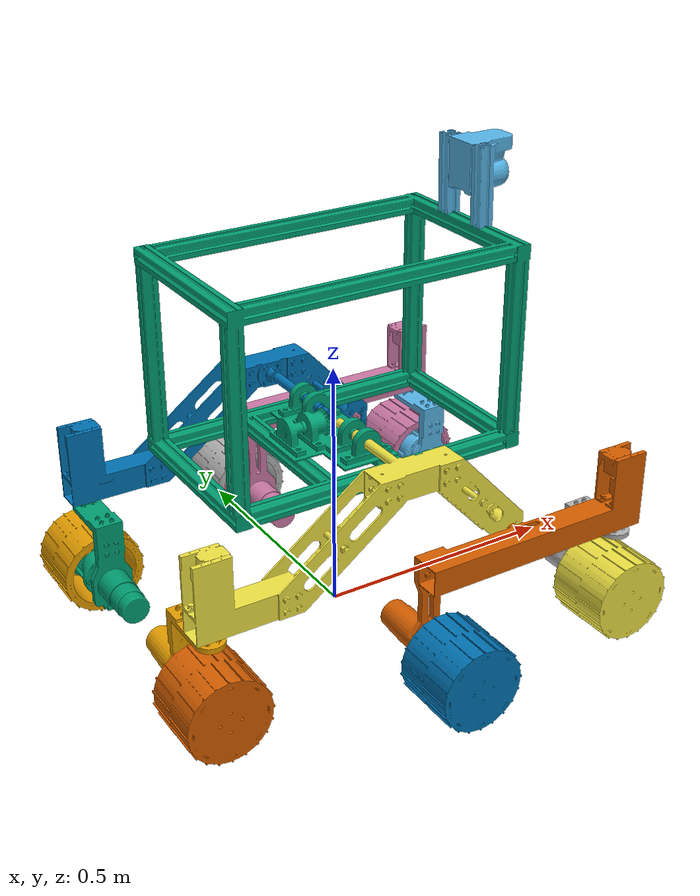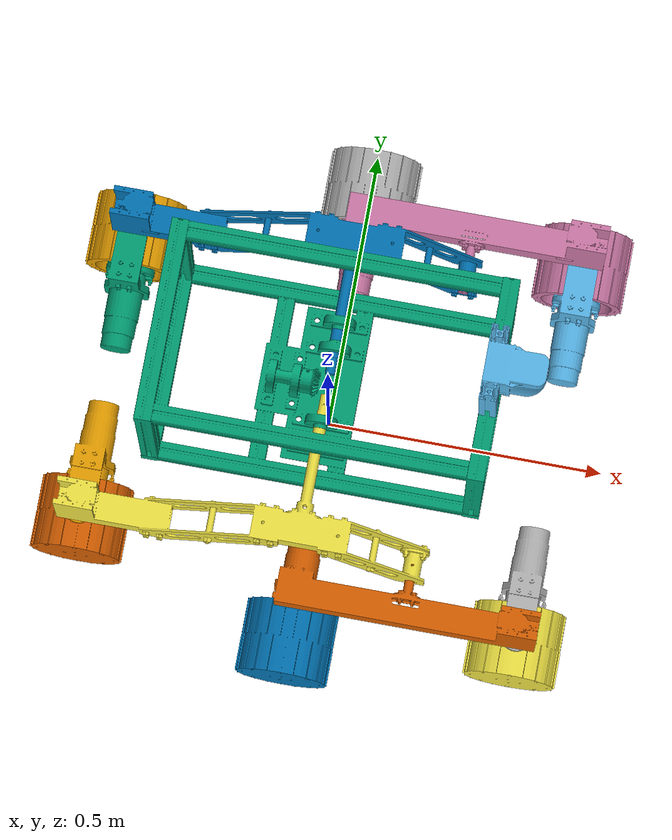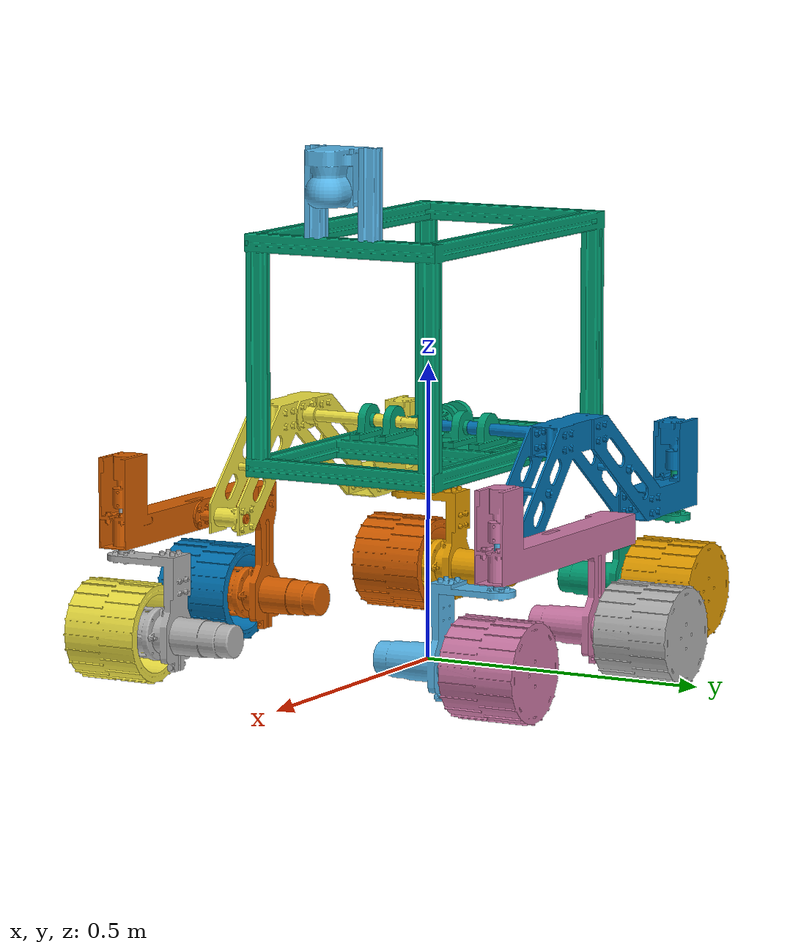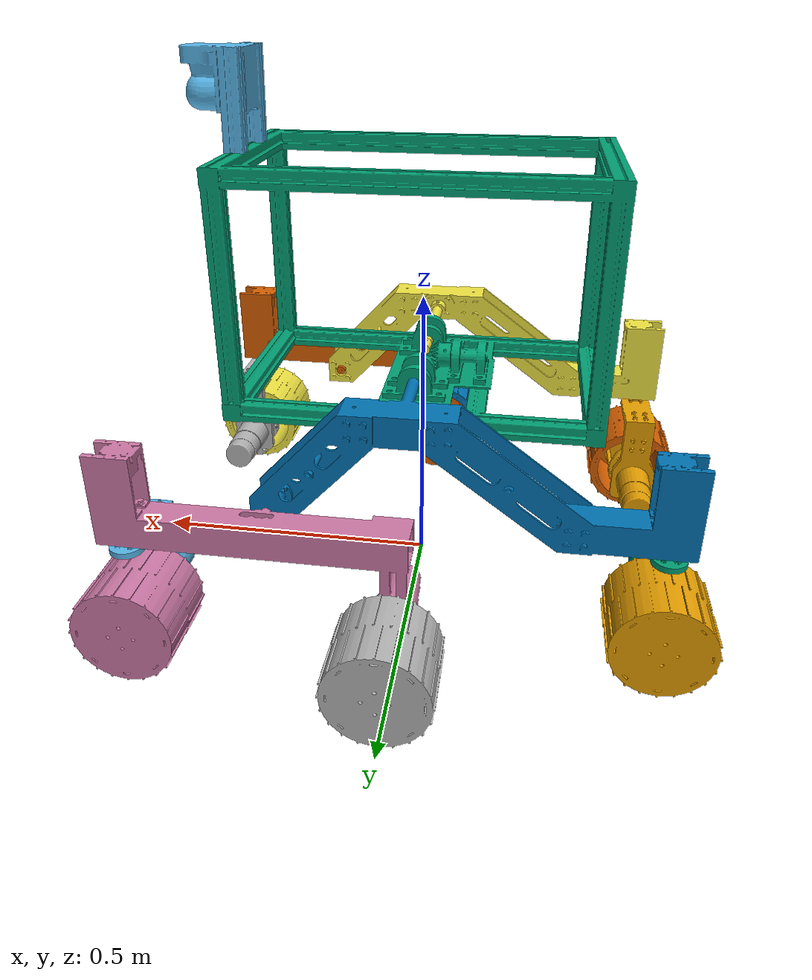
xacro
<?xml version="1.0"?>
<robot name="fr01" xmlns:xacro="http://ros.org/wiki/xacro">
  <!-- File Include -->
  <xacro:include filename="$(find fr01_description)/urdf/sensor/hokuyo3d.urdf.xacro"/>
  <xacro:include filename="$(find fr01_description)/robots/fr01.urdf.xacro"/>

  <!-- add Hokuyo3d -->
  <!-- Link -->
  <xacro:hokuyo3d_link_base_link name="hokuyo3d_link"/>

  <!-- Joint -->
  <joint name="joint_hokuyo3d" type="fixed">
    <origin rpy="${M_PI} 0 0" xyz="0.3405 0 0.463"/>
    <parent link="base_link"/>
    <child link="hokuyo3d_link"/>
  </joint>

  <!-- Gazebo -->
  <xacro:hokuyo3d_gazebo/>

</robot>

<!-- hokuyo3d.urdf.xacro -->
<robot xmlns:xacro="http://ros.org/wiki/xacro">

  <xacro:include filename="$(find fr01_description)/urdf/sensor/hokuyo3d.gazebo.xacro"/>

  <xacro:macro name="hokuyo3d_link_base_link" params="name">
    <link name="${name}">
      <visual>
        <geometry>
	  <mesh filename="package://fr01_description/meshes/visual/yvt-x002.dae"/>
        </geometry>
      </visual>
      <collision>
	<origin xyz="0 0 0"/>
        <geometry>
	  <box size="0.106 0.085 0.105"/>
        </geometry>
      </collision>
      <inertial>
        <mass value="0.0"/>
        <inertia ixx="0.016" ixy="-0.006" ixz="-0.00002"
		 iyy="0.004" iyz="0"
		 izz="0.018" />
      </inertial>
    </link>
  </xacro:macro>
</robot>

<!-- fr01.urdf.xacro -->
<robot name="fr01" xmlns:xacro="http://ros.org/wiki/xacro">

  <xacro:include filename="$(find fr01_description)/urdf/common.xacro"/>
  <xacro:include filename="$(find fr01_description)/urdf/materials.xacro"/>

  <xacro:include filename="$(find fr01_description)/urdf/body/body.urdf.xacro"/>
  <xacro:include filename="$(find fr01_description)/urdf/leg/leg.urdf.xacro"/>
  <xacro:include filename="$(find fr01_description)/urdf/wheel/wheel.urdf.xacro"/>

  <!-- wheel parameters -->
  <xacro:property name="wheel_radius" value="0.08"/>
  <xacro:property name="wheel_width" value="0.16"/>

  <!--==================== Link & Joint ====================-->
  <!-- Body -->
  <link name="base_footprint"/>
  <xacro:base_stabilized_v0 parent="base_footprint">
	<origin xyz="0 0 0" rpy="0 0 ${-M_PI/2}"/>
	<origin xyz="0 0 0.370" rpy="0 0 0"/>
  </xacro:base_stabilized_v0>
  <xacro:base_link_v0 parent="base_stabilized">
	<origin xyz="0 0 0" rpy="0 0 ${-M_PI/2}"/>
	<origin xyz="0 0 0" rpy="0 0 0"/>
	<axis xyz="0 1 0"/>
  </xacro:base_link_v0>

  <!-- Rocker -->
  <xacro:rocker_v0 side="right" parent="base_link">
  	<origin xyz="0 0 0" rpy="0 0 0"/>
	<inertia ixx="0.001" ixy="-0.0000001417" ixz="-0.00004954"
		 iyy="0.001" iyz="0.00000007736"
		 izz="0.001"/>
  	<origin xyz="0 -0.213 0.028 " rpy="0 0 0"/>
	<axis xyz="0 1 0"/>
  </xacro:rocker_v0>

  <xacro:rocker_v0 side="left" parent="base_link">
  	<origin xyz="0 0 0" rpy="0 0 0"/>
	<inertia ixx="0.001" ixy="0.0000001419" ixz="-0.00004954"
		 iyy="0.001" iyz="-0.0004669"
		 izz="0.001"/>
  	<origin xyz="0 0.213 0.028 " rpy="0 0 0"/>
	<axis xyz="0 1 0"/>
  </xacro:rocker_v0>

  <!-- Bogie -->
  <xacro:bogie_v0 side="right" parent="rocker_right_link">
  	<origin xyz="0 0 0" rpy="0 0 0"/>
  	<inertia ixx="0.002" ixy="0.0000006258" ixz="-0.000002349"
  		 iyy="0.002" iyz="-0.0000001149"
  		 izz="0.003"/>
  	<origin xyz="0.2 -0.019945 -0.15" rpy="0 0 ${M_PI}"/>
  	<axis xyz="0 1 0"/>
  </xacro:bogie_v0>

  <xacro:bogie_v0 side="left" parent="rocker_left_link">
  	<origin xyz="0 0 0" rpy="0 0 0"/>
  	<inertia ixx="0.002" ixy="-0.0000006528" ixz="-0.000002349"
  		 iyy="0.002" iyz="0.0000001156"
  		 izz="0.003"/>
  	<origin xyz="0.2 0.019945 -0.15" rpy="0 0 ${M_PI}"/>
  	<axis xyz="0 1 0"/>
  </xacro:bogie_v0>

  <!-- Steer -->
  <xacro:steer_v0 part="right_front" parent="bogie_right_link">
  	<origin xyz="0 0 0" rpy="0 0 0"/>
  	<origin xyz="-0.202 0.115 0.05" rpy="0 0 ${-M_PI/2}"/>
  	<axis xyz="0 0 1"/>
  </xacro:steer_v0>

  <xacro:steer_v0 part="right_back" parent="rocker_right_link">
  	<origin xyz="0 0 0" rpy="0 0 0"/>
  	<origin xyz="-0.4 -0.05 -0.1" rpy="0 0 ${M_PI/2}"/>
  	<axis xyz="0 0 1"/>
  </xacro:steer_v0>

  <xacro:steer_v0 part="left_front" parent="bogie_left_link">
  	<origin xyz="0 0 0" rpy="0 0 0"/>
  	<origin xyz="-0.202 -0.115 0.05" rpy="0 0 ${M_PI/2}"/>
  	<axis xyz="0 0 1"/>
  </xacro:steer_v0>

  <xacro:steer_v0 part="left_back" parent="rocker_left_link">
  	<origin xyz="0 0 0" rpy="0 0 0"/>
  	<origin xyz="-0.4 0.05 -0.1" rpy="0 0 ${-M_PI/2}"/>
  	<axis xyz="0 0 1"/>
  </xacro:steer_v0>

  <!-- Wheel -->
  <xacro:wheel_v0 part="right_front" parent="steer_right_front_link"
      wheel_radius="${wheel_radius}" wheel_width="${wheel_width}">
  	<origin xyz="0 0 0" rpy="0 0 0"/>
  	<origin xyz="-0.065 0 -0.2145" rpy="0 0 0"/>
  	<axis xyz="1 0 0"/>
  	<origin xyz="0.065 0 0" rpy="0 ${M_PI/2} 0"/>
  </xacro:wheel_v0>

  <xacro:wheel_v0 part="right_middle" parent="bogie_right_link"
      wheel_radius="${wheel_radius}" wheel_width="${wheel_width}">
  	<origin xyz="0 0 0" rpy="0 0 0"/>
  	<origin xyz="0.198 0.2485 -0.165" rpy="0 0 ${-M_PI/2}"/>
  	<axis xyz="1 0 0"/>
  	<origin xyz="0.065 0 0" rpy="0 ${M_PI/2} 0"/>
  </xacro:wheel_v0>

  <xacro:wheel_v0 part="right_back" parent="steer_right_back_link"
      wheel_radius="${wheel_radius}" wheel_width="${wheel_width}">
  	<origin xyz="0 0 0" rpy="0 0 0"/>
  	<origin xyz="-0.065 0 -0.2145" rpy="0 0 0"/>
  	<axis xyz="1 0 0"/>
  	<origin xyz="0.065 0 0" rpy="0 ${M_PI/2} 0"/>
  </xacro:wheel_v0>

  <xacro:wheel_v0 part="left_front" parent="steer_left_front_link"
      wheel_radius="${wheel_radius}" wheel_width="${wheel_width}">
  	<origin xyz="0 0 0" rpy="0 ${M_PI} 0"/>
  	<origin xyz="-0.065 0 -0.2145" rpy="0 ${M_PI} 0"/>
  	<axis xyz="1 0 0"/>
  	<origin xyz="-0.065 0 0" rpy="0 ${M_PI/2} 0"/>
  </xacro:wheel_v0>

  <xacro:wheel_v0 part="left_middle" parent="bogie_left_link"
      wheel_radius="${wheel_radius}" wheel_width="${wheel_width}">
  	<origin xyz="0 0 0" rpy="0 ${M_PI} 0"/>
  	<origin xyz="0.198 -0.2485 -0.165" rpy="0 ${M_PI} ${M_PI/2}"/>
  	<axis xyz="1 0 0"/>
  	<origin xyz="-0.065 0 0" rpy="0 ${M_PI/2} 0"/>
  </xacro:wheel_v0>

  <xacro:wheel_v0 part="left_back" parent="steer_left_back_link"
      wheel_radius="${wheel_radius}" wheel_width="${wheel_width}">
  	<origin xyz="0 0 0" rpy="0 ${M_PI} 0"/>
  	<origin xyz="-0.065 0 -0.2145" rpy="0 ${M_PI} 0"/>
  	<axis xyz="1 0 0"/>
  	<origin xyz="-0.065 0 0" rpy="0 ${M_PI/2} 0"/>
  </xacro:wheel_v0>

  <!--==================== Transmission ====================-->
  <!-- base_link -->
  <xacro:base_link_trans_v0 />

  <!-- Rocker -->
  <xacro:rocker_trans_v0 side="right"/>
  <xacro:rocker_trans_v0 side="left"/>

  <!-- Bogie -->
  <xacro:bogie_trans_v0 side="right"/>
  <xacro:bogie_trans_v0 side="left"/>

  <!-- Steer -->
  <xacro:steer_trans_v0 part="right_front"/>
  <xacro:steer_trans_v0 part="right_back"/>
  <xacro:steer_trans_v0 part="left_front"/>
  <xacro:steer_trans_v0 part="left_back"/>

  <!-- Wheel -->
  <xacro:wheel_trans_v0 part="right_front"/>
  <xacro:wheel_trans_v0 part="right_middle"/>
  <xacro:wheel_trans_v0 part="right_back"/>
  <xacro:wheel_trans_v0 part="left_front"/>
  <xacro:wheel_trans_v0 part="left_middle"/>
  <xacro:wheel_trans_v0 part="left_back"/>

  <!--==================== Gazebo ====================-->
  <!-- firstly load diff_drive_controller without namespaces -->
  <gazebo>
    <plugin name="gazebo_ros_control" filename="libgazebo_ros_control.so">
    </plugin>
  </gazebo>
  <!-- Wheel -->
  <xacro:wheel_gazebo_v0 part="right_front"/>
  <xacro:wheel_gazebo_v0 part="right_middle"/>
  <xacro:wheel_gazebo_v0 part="right_back"/>
  <xacro:wheel_gazebo_v0 part="left_front"/>
  <xacro:wheel_gazebo_v0 part="left_middle"/>
  <xacro:wheel_gazebo_v0 part="left_back"/>

  <!-- Body -->
  <xacro:base_link_gazebo_v0/>
  <xacro:base_stabilized_gazebo_v0/>

  <!-- Rocker -->
  <xacro:rocker_gazebo_v0 side="right"/>
  <xacro:rocker_gazebo_v0 side="left"/>

  <!-- Bogie -->
  <xacro:bogie_gazebo_v0 side="right"/>
  <xacro:bogie_gazebo_v0 side="left"/>

  <!-- Steer -->
  <xacro:steer_gazebo_v0 part="right_front"/>
  <xacro:steer_gazebo_v0 part="right_back"/>
  <xacro:steer_gazebo_v0 part="left_front"/>
  <xacro:steer_gazebo_v0 part="left_back"/>

</robot>

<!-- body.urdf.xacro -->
<robot xmlns:xacro="http://ros.org/wiki/xacro">

  <xacro:include filename="$(find fr01_description)/urdf/body/body.transmission.xacro"/>
  <xacro:include filename="$(find fr01_description)/urdf/body/body.gazebo.xacro"/>

  <xacro:macro name="base_link_v0" params="parent *link_origin *joint_origin *joint_axis">
    <joint name="base_link_joint" type="continuous">
      <insert_block name="joint_origin" />
      <parent link="${parent}"/>
      <child link="base_link"/>
      <insert_block name="joint_axis"/>
    </joint>

    <link name="base_link">
      <visual>
	<insert_block name="link_origin"/>
        <geometry>
          <mesh filename="package://fr01_description/meshes/visual/base_link.dae"/>
        </geometry>
      </visual>
      <collision>
	<insert_block name="link_origin"/>
        <geometry>
	  <mesh filename="package://fr01_description/meshes/collision/base_link.stl"/>
        </geometry>
      </collision>
      <inertial>
        <mass value="6.441"/>
        <inertia ixx="0.004" ixy="0.0" ixz="0.0"
		 iyy="0.002" iyz="0.0"
		 izz="0.005" />
      </inertial>
    </link>
  </xacro:macro>

  <xacro:macro name="base_stabilized_v0" params="parent *link_origin *joint_origin">
    <joint name="base_stabilized_joint" type="fixed">
      <insert_block name="joint_origin" />
      <parent link="${parent}"/>
      <child link="base_stabilized"/>
    </joint>
    <link name="base_stabilized">
      <collision>
	<insert_block name="link_origin"/>
	<visual/>
        <geometry>
	  <mesh filename="package://fr01_description/meshes/collision/base_link.stl"/>
        </geometry>
      </collision>
      <inertial>
        <mass value="6.441"/>
        <inertia ixx="0.004" ixy="0.0" ixz="0.00"
		 iyy="0.002" iyz="0.0"
		 izz="0.005" />
      </inertial>
    </link>
  </xacro:macro>

</robot>

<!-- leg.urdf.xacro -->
<robot xmlns:xacro="http://ros.org/wiki/xacro">

  <xacro:include filename="$(find fr01_description)/urdf/leg/leg.gazebo.xacro"/>
  <xacro:include filename="$(find fr01_description)/urdf/leg/leg.transmission.xacro"/>

  <xacro:macro name="bogie_v0" params="side parent *link_origin *inertia *joint_origin *joint_axis">
	<joint name="bogie_${side}_joint" type="revolute">
	  <insert_block name="joint_origin"/>
	  <parent link="${parent}"/>
	  <child link="bogie_${side}_link"/>
	  <insert_block name="joint_axis"/>
	  <dynamics dampint="0.7" friction="0.7"/>
	  <limit effort="30.0" lower="${-M_PI/2}" upper="${M_PI/2}" velocity="${2*M_PI}"/>
	</joint>

    <link name="bogie_${side}_link">
      <visual>
		<insert_block name="link_origin"/>
        <geometry>
          <mesh filename="package://fr01_description/meshes/visual/bogie_${side}_link.dae"/>
        </geometry>
      </visual>
      <collision>
		<insert_block  name="link_origin"/>
        <geometry>
		  <mesh filename="package://fr01_description/meshes/collision/bogie_${side}_link.stl"/>
        </geometry>
      </collision>
      <inertial>
		<mass value="3.374"/>
		<insert_block name="inertia"/>
      </inertial>
    </link>
  </xacro:macro>

  <xacro:macro name="rocker_v0" params="side parent *link_origin *inertia *joint_origin *joint_axis">
	<joint name="rocker_${side}_joint" type="revolute">
	  <insert_block name="joint_origin"/>
	  <parent link="${parent}"/>
	  <child link="rocker_${side}_link"/>
	  <insert_block name="joint_axis"/>
	  <dynamics dampint="0.7" friction="0.7"/>
	  <limit effort="30.0" lower="${-M_PI/2}" upper="${M_PI/2}" velocity="${2*M_PI}"/>
	</joint>

	<link name="rocker_${side}_link">
	  <visual>
		<insert_block name="link_origin"/>
        <geometry>
          <mesh filename="package://fr01_description/meshes/visual/rocker_${side}_link.dae"/>
        </geometry>
      </visual>
      <collision>
		<insert_block name="link_origin"/>
        <geometry>
		  <mesh filename="package://fr01_description/meshes/collision/rocker_${side}_link.stl"/>
        </geometry>
      </collision>
      <inertial>
		<mass value="2.088"/>
		<insert_block name="inertia"/>
      </inertial>
    </link>
  </xacro:macro>

</robot>

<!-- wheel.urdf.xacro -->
<robot xmlns:xacro="http://ros.org/wiki/xacro">

  <xacro:include filename="$(find fr01_description)/urdf/wheel/wheel.transmission.xacro"/>
  <xacro:include filename="$(find fr01_description)/urdf/wheel/wheel.gazebo.xacro"/>

  <xacro:macro name="wheel_v0" params="part parent wheel_radius wheel_width
      *link_origin *joint_origin *joint_axis *collision_origin">
	<joint name="wheel_${part}_joint" type="continuous">
	  <insert_block name="joint_origin"/>
	  <parent link="${parent}"/>
	  <child link="wheel_${part}_link"/>
	  <insert_block name="joint_axis"/>
	</joint>

    <link name="wheel_${part}_link">
      <visual>
		<insert_block name="link_origin"/>
        <geometry>
          <mesh filename="package://fr01_description/meshes/visual/wheel_link.dae"/>
        </geometry>
      </visual>
      <collision>
          <insert_block name="collision_origin"/>
          <geometry>
            <!-- diff drive controller assumese the collision is cylinder -->
            <cylinder radius="${wheel_radius}" length="${wheel_width}"/>
        </geometry>
      </collision>
      <inertial>
        <mass value="2.966"/>
        <inertia ixx="0.006" ixy="0" ixz="0"
				 iyy="0.004" iyz="0"
				 izz="0.004" />
      </inertial>
    </link>
  </xacro:macro>

  <xacro:macro name="steer_v0" params="part parent *link_origin *joint_origin *joint_axis">
	<joint name="steer_${part}_joint" type="revolute">
	  <insert_block name="joint_origin"/>
	  <parent link="${parent}"/>
	  <child link="steer_${part}_link"/>
	  <insert_block name="joint_axis"/>
	  <dynamics dampint="0.7" friction="0.7"/>
	  <limit effort="30.0" lower="${-M_PI/2}" upper="${M_PI/2}" velocity="${2*M_PI}"/>
	</joint>

    <link name="steer_${part}_link">
      <visual>
		<insert_block name="link_origin"/>
        <geometry>
          <mesh filename="package://fr01_description/meshes/visual/steer_link.dae"/>
        </geometry>
      </visual>
      <collision>
		<insert_block name="link_origin"/>
        <geometry>
		  <mesh filename="package://fr01_description/meshes/collision/steer_link.stl"/>
        </geometry>
      </collision>
      <inertial>
        <mass value="2.522"/>
        <inertia ixx="0.0005737" ixy="0.0000000001174" ixz="0.0000003442"
				 iyy="0.002" iyz="-0.0000000007199"
				 izz="0.002" />
      </inertial>
    </link>
  </xacro:macro>
</robot>
